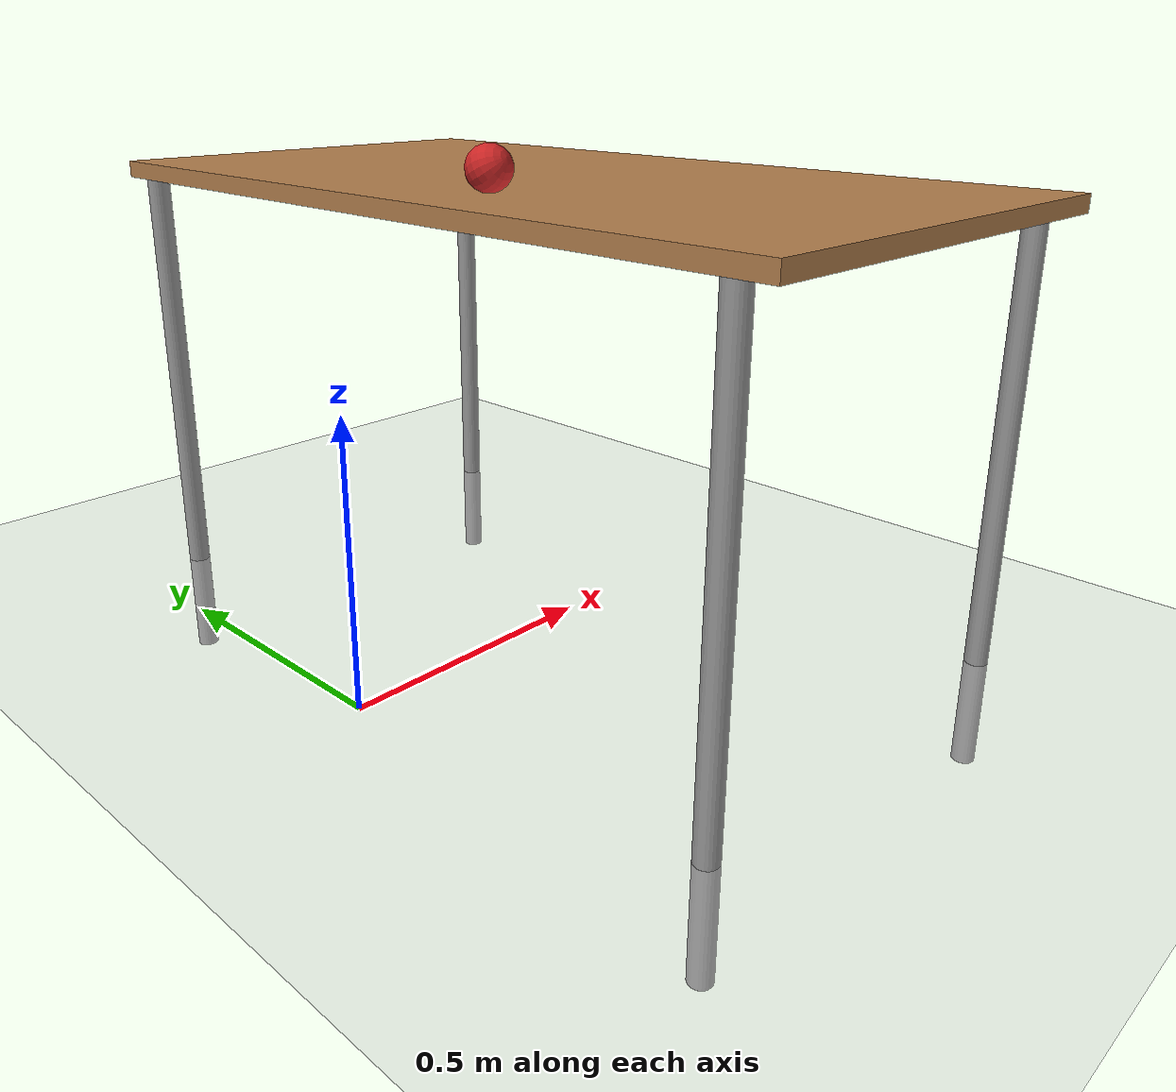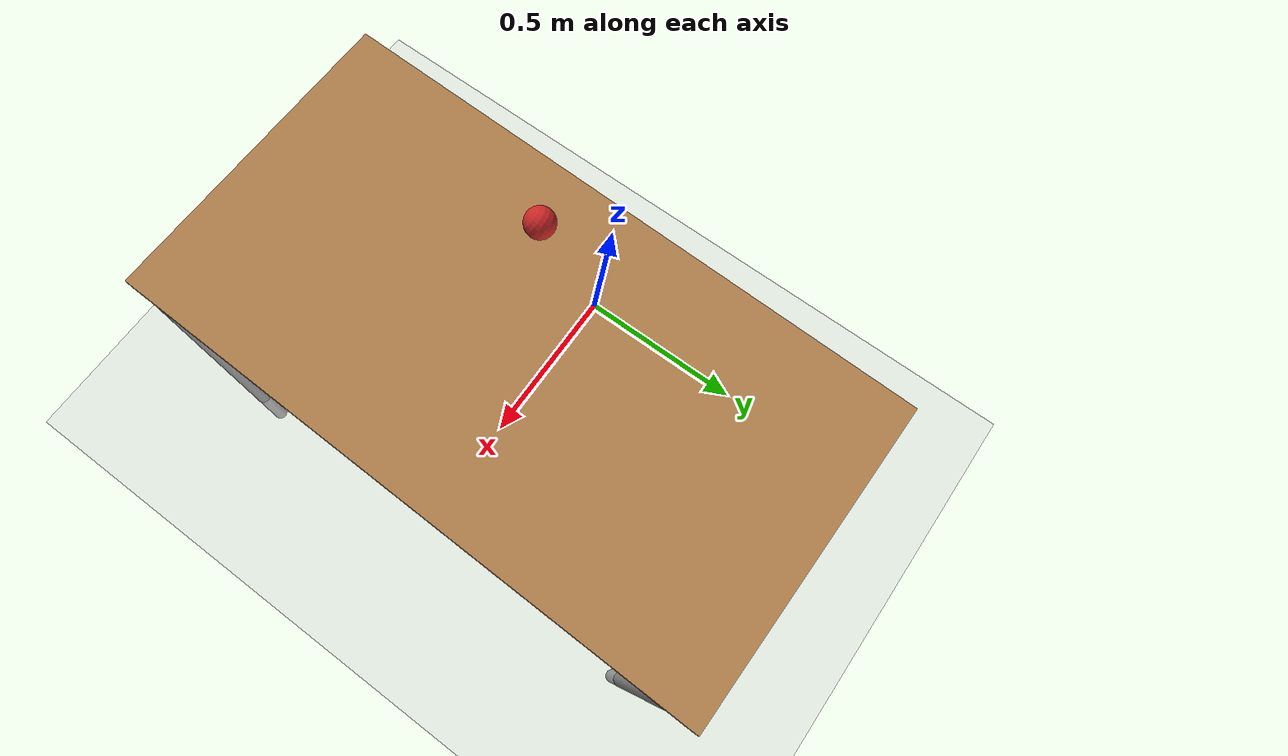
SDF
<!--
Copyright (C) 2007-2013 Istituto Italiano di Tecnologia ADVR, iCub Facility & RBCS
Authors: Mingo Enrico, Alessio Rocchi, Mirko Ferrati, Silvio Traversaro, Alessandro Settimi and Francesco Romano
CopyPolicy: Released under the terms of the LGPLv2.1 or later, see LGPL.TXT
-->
<sdf version="1.4">
 <world name="default">
  <include><uri>model://sun</uri></include>
  <include><uri>model://ground_plane</uri></include>
  <model name="table">
   <static>1</static>
   <link name="link">
    <collision name="surface">
     <pose>0 0 1 0 -0 0</pose>
     <geometry><box><size>1.5 0.8 0.03</size></box></geometry>
     <surface><friction><ode><mu>0.6</mu><mu2>0.6</mu2></ode></friction></surface>
    </collision>
    <visual name="visual1">
     <pose>0 0 1 0 -0 0</pose>
     <geometry><box><size>1.5 0.8 0.03</size></box></geometry>
     <material>
      <script><uri>file://media/materials/scripts/gazebo.material</uri><name>Gazebo/Wood</name></script>
     </material>
    </visual>
    <collision name="front_left_leg">
     <pose>0.68 0.38 0.5 0 -0 0</pose>
     <geometry><cylinder><radius>0.02</radius><length>1</length></cylinder></geometry>
    </collision>
    <visual name="front_left_leg">
     <pose>0.68 0.38 0.5 0 -0 0</pose>
     <geometry><cylinder><radius>0.02</radius><length>1</length></cylinder></geometry>
     <material>
      <script><uri>file://media/materials/scripts/gazebo.material</uri><name>Gazebo/Grey</name></script>
     </material>
    </visual>
    <collision name="front_right_leg">
     <pose>0.68 -0.38 0.5 0 -0 0</pose>
     <geometry><cylinder><radius>0.02</radius><length>1</length></cylinder></geometry>
    </collision>
    <visual name="front_right_leg">
     <pose>0.68 -0.38 0.5 0 -0 0</pose>
     <geometry><cylinder><radius>0.02</radius><length>1</length></cylinder></geometry>
     <material>
      <script><uri>file://media/materials/scripts/gazebo.material</uri><name>Gazebo/Grey</name></script>
     </material>
    </visual>
    <collision name="back_right_leg">
     <pose>-0.68 -0.38 0.5 0 -0 0</pose>
     <geometry><cylinder><radius>0.02</radius><length>1</length></cylinder></geometry>
    </collision>
    <visual name="back_right_leg">
     <pose>-0.68 -0.38 0.5 0 -0 0</pose>
     <geometry><cylinder><radius>0.02</radius><length>1</length></cylinder></geometry>
     <material>
      <script><uri>file://media/materials/scripts/gazebo.material</uri><name>Gazebo/Grey</name></script>
     </material>
    </visual>
    <collision name="back_left_leg">
     <pose>-0.68 0.38 0.5 0 -0 0</pose>
     <geometry><cylinder><radius>0.02</radius><length>1</length></cylinder></geometry>
    </collision>
    <visual name="back_left_leg">
     <pose>-0.68 0.38 0.5 0 -0 0</pose>
     <geometry><cylinder><radius>0.02</radius><length>1</length></cylinder></geometry>
     <material>
      <script><uri>file://media/materials/scripts/gazebo.material</uri><name>Gazebo/Grey</name></script>
     </material>
    </visual>
   </link>
   <pose>0.489676 0.037336 -0.200996 0 -0 1.55047</pose>
   <scale>1 1 1</scale>
   <link name="link">
    <pose>0.489676 0.037336 -0.200996 0 -0 1.55047</pose>
    <velocity>0 0 0 0 -0 0</velocity>
    <acceleration>0 0 0 0 -0 0</acceleration>
    <wrench>0 0 0 0 -0 0</wrench>
   </link>
  </model>
  <model name="cricket_ball">
   <link name="link">
    <pose>0 0 0.0375 0 -0 0</pose>
    <inertial>
     <mass>0.1467</mass>
     <inertia>
      <ixx>8.25187e-05</ixx>
      <ixy>0</ixy>
      <ixz>0</ixz>
      <iyy>8.25187e-05</iyy>
      <iyz>0</iyz>
      <izz>8.25187e-05</izz>
     </inertia>
    </inertial>
    <collision name="collision">
     <geometry><sphere><radius>0.0375</radius></sphere></geometry>
     <surface>
      <contact>
       <poissons_ratio>0.347</poissons_ratio>
       <elastic_modulus>8.8e+09</elastic_modulus>
       <ode><kp>100000</kp><kd>100</kd><max_vel>100</max_vel><min_depth>0.001</min_depth></ode>
      </contact>
      <friction>
       <torsional>
        <coefficient>1</coefficient>
        <use_patch_radius>0</use_patch_radius>
        <surface_radius>0.01</surface_radius>
       </torsional>
      </friction>
     </surface>
    </collision>
    <visual name="visual">
     <geometry><sphere><radius>0.0375</radius></sphere></geometry>
     <material>
      <script><uri>file://media/materials/scripts/gazebo.material</uri><name>Gazebo/Red</name></script>
     </material>
    </visual>
    <velocity_decay><linear>0</linear><angular>0.005</angular></velocity_decay>
   </link>
   <pose>0.237749 -0.038959 0.833229 0.55121 1.00295 -0.763089</pose>
  </model>
 </world>
</sdf>
